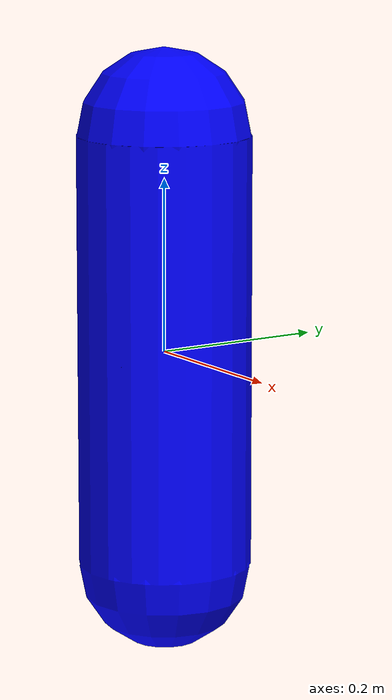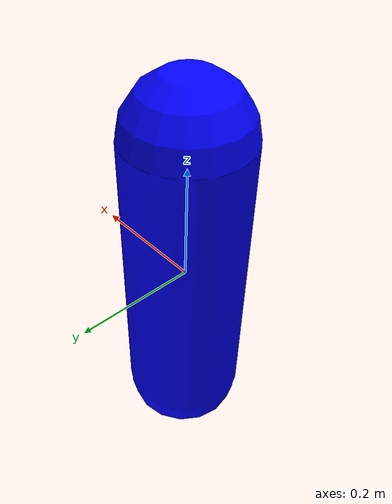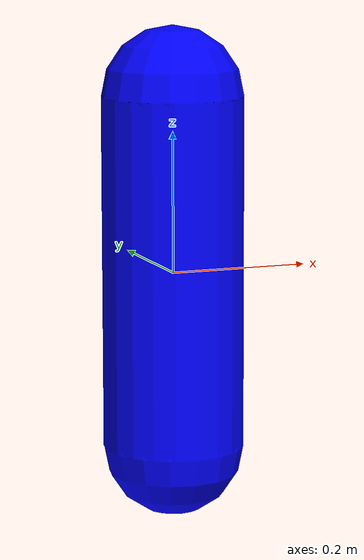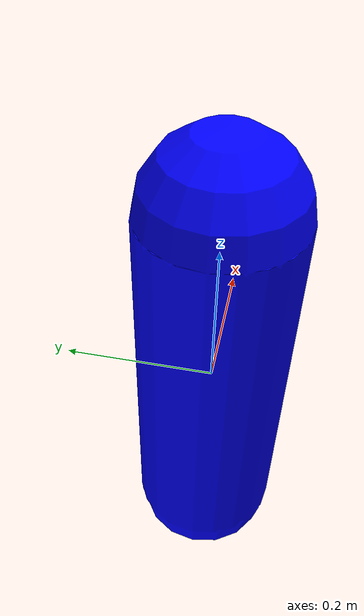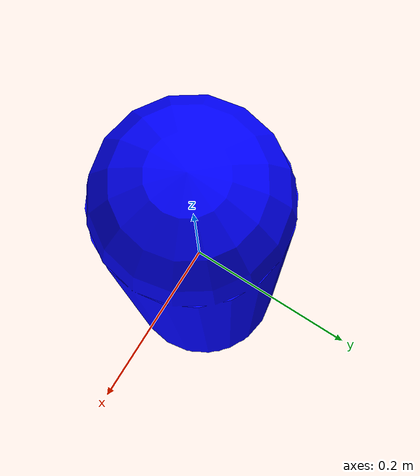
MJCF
<mujoco model="unnamed_model">
    <compiler angle="radian" autolimits="true" coordinate="local" />
    <option timestep="0.002" viscosity="0.0" integrator="implicit">
        <flag gravity="enable" contact="enable" />
    </option>

    <!-- Actuators -->
    <actuator>
        <position ctrllimited="true" ctrlrange="-1.5707964 1.5707964" name="unnamed_position_(0)" joint="neck_joint" />
        <position ctrllimited="true" ctrlrange="-1.5707964 1.5707964" name="unnamed_position_(1)" joint="abdominal_joint" />
        <position ctrllimited="true" name="unnamed_position_(2)" joint="unnamed_joint_(0)" />
        <position ctrllimited="true" name="unnamed_position_(3)" joint="unnamed_joint_(1)" />
        <position ctrllimited="true" name="unnamed_position_(4)" joint="unnamed_joint_(2)" />
        <position ctrllimited="true" name="unnamed_position_(5)" joint="unnamed_joint_(3)" />
        <position ctrllimited="true" name="unnamed_position_(6)" joint="unnamed_joint_(4)" />
        <position ctrllimited="true" name="unnamed_position_(7)" joint="unnamed_joint_(5)" />
    </actuator>

    <!-- Worldbody -->
    <worldbody>
        <body name="head">
            <joint axis="0.0 1.0 0.0" range="-1.5707964 1.5707964" name="neck_joint" />
            <geom size="0.1" type="sphere" name="unnamed_sphere" rgba="0.0 0.0 1.0 1.0" />
        </body>

        <body name="thorax">
            <joint axis="0.0 1.0 0.0" range="-1.5707964 1.5707964" pos="0.0 0.0 -0.25" name="abdominal_joint" />
            <geom size="0.1 0.25" type="capsule" name="unnamed_capsule_(0)" rgba="0.0 0.0 1.0 1.0" />

            <!-- Legs -->
            <body name="left_front_leg_(1)">
                <geom size="0.05 0.25" type="capsule" name="unnamed_capsule_(1)" rgba="0.0 0.0 1.0 1.0" />
            </body>
            <body name="right_front_leg_(1)">
                <geom size="0.05 0.25" type="capsule" name="unnamed_capsule_(2)" rgba="0.0 0.0 1.0 1.0" />
            </body>
            <body name="left_middle_leg_(1)">
                <geom size="0.05 0.25" type="capsule" name="unnamed_capsule_(3)" rgba="0.0 0.0 1.0 1.0" />
            </body>
            <body name="right_middle_leg_(1)">
                <geom size="0.05 0.25" type="capsule" name="unnamed_capsule_(4)" rgba="0.0 0.0 1.0 1.0" />
            </body>
            <body name="left_rear_leg_(1)">
                <geom size="0.05 0.25" type="capsule" name="unnamed_capsule_(5)" rgba="0.0 0.0 1.0 1.0" />
            </body>
            <body name="right_rear_leg_(1)">
                <geom size="0.05 0.25" type="capsule" name="unnamed_capsule_(6)" rgba="0.0 0.0 1.0 1.0" />
            </body>
        </body>

        <body name="abdomen">
            <geom size="0.1 0.25" type="capsule" name="unnamed_capsule_(7)" rgba="0.0 0.0 1.0 1.0" />
        </body>

        <!-- Leg Joints -->
        <body name="left_front_leg_(0)">
            <joint axis="0.0 1.0 0.0" range="-1.5707964 1.5707964" name="unnamed_joint_(0)" />
            <geom size="0.05 0.25" type="capsule" name="unnamed_capsule_(8)" rgba="0.0 0.0 1.0 1.0" />
        </body>
        <body name="right_front_leg_(0)">
            <joint axis="0.0 1.0 0.0" range="-1.5707964 1.5707964" name="unnamed_joint_(1)" />
            <geom size="0.05 0.25" type="capsule" name="unnamed_capsule_(9)" rgba="0.0 0.0 1.0 1.0" />
        </body>
        <body name="left_middle_leg_(0)">
            <joint axis="0.0 1.0 0.0" range="-1.5707964 1.5707964" name="unnamed_joint_(2)" />
            <geom size="0.05 0.25" type="capsule" name="unnamed_capsule_(10)" rgba="0.0 0.0 1.0 1.0" />
        </body>
        <body name="right_middle_leg_(0)">
            <joint axis="0.0 1.0 0.0" range="-1.5707964 1.5707964" name="unnamed_joint_(3)" />
            <geom size="0.05 0.25" type="capsule" name="unnamed_capsule_(11)" rgba="0.0 0.0 1.0 1.0" />
        </body>
        <body name="left_rear_leg_(0)">
            <joint axis="0.0 1.0 0.0" range="-1.5707964 1.5707964" name="unnamed_joint_(4)" />
            <geom size="0.05 0.25" type="capsule" name="unnamed_capsule_(12)" rgba="0.0 0.0 1.0 1.0" />
        </body>
        <body name="right_rear_leg_(0)">
            <joint axis="0.0 1.0 0.0" range="-1.5707964 1.5707964" name="unnamed_joint_(5)" />
            <geom size="0.05 0.25" type="capsule" name="unnamed_capsule_(13)" rgba="0.0 0.0 1.0 1.0" />
        </body>
    </worldbody>
</mujoco>
